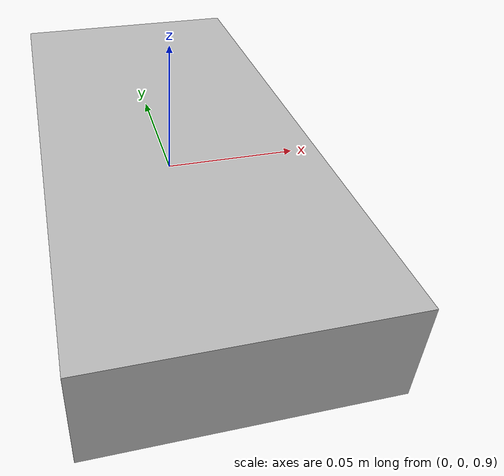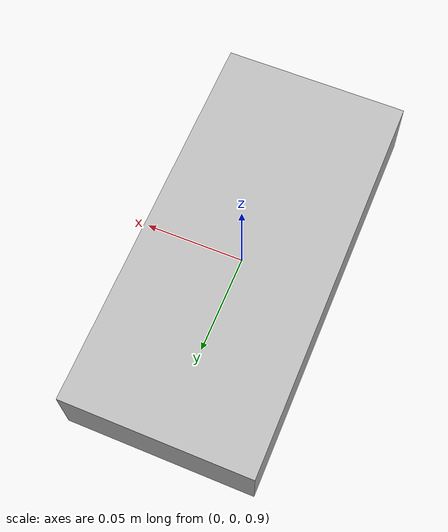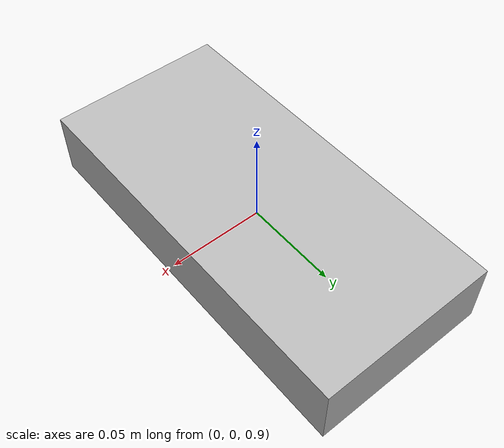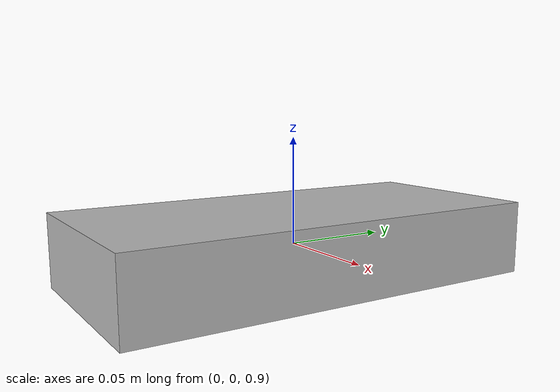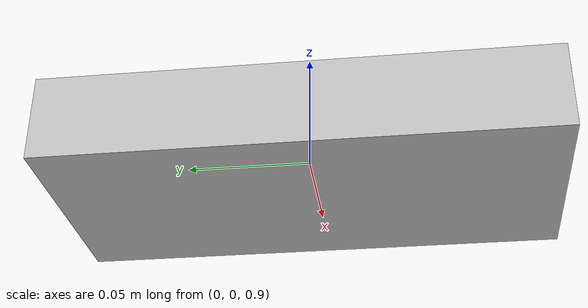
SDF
<sdf version="1.3">
<model name="flynet">
  <pose>0 0 0.9 0.0 0.0 0.0</pose>
  <static>false</static>
    <link name="link">
      <inertial>
        <mass>1.0</mass>
        <inertia>
          <ixx>1.0</ixx>
          <ixy>0.0</ixy>
          <ixz>0.0</ixz>
          <iyy>1.0</iyy>
          <iyz>0.0</iyz>
          <izz>1.0</izz>
        </inertia>
      </inertial>
      <collision name="collision">
        <geometry>
          <box>
            <size>0.095 0.202 0.035</size>
          </box>
        </geometry>
      </collision>
      <visual name="visual">
        <geometry>
          <box>
            <size>0.095 0.202 0.035</size>
          </box>
        </geometry>
	<material>
          <script>
            <uri>model://flynet/materials/scripts</uri>
            <uri>model://flynet/materials/textures</uri>
            <name>Flynet/Diffuse</name>
          </script>
        </material>

      </visual>
    </link>
  </model>
</sdf>
